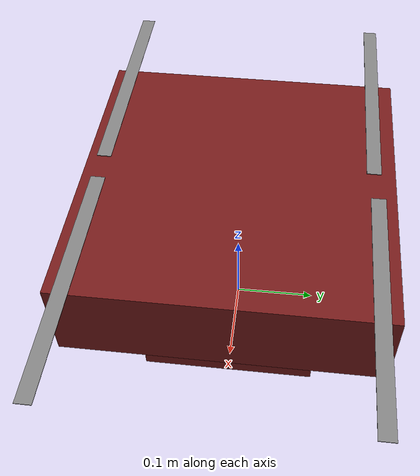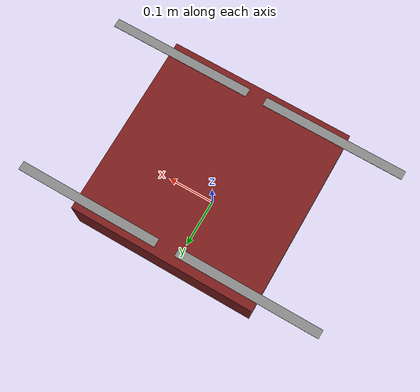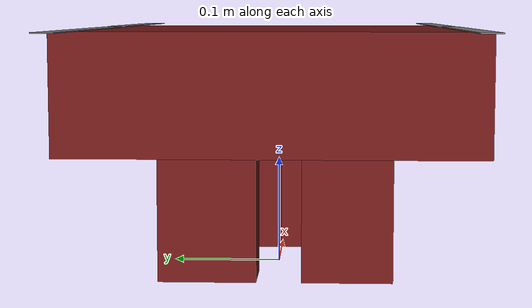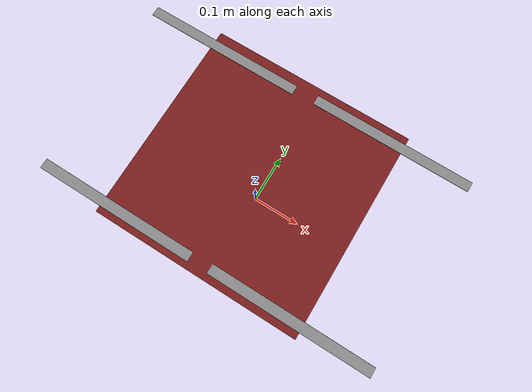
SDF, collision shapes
<?xml version="1.0" encoding="UTF-8"?>
<sdf version='1.9'>
  <!-- F450 + UWB tag variant. Follows the x500_lidar_2d / x500_mono_cam convention:
       merge-include the motorized base airframe, then add the sensor (here a plugin). -->
  <model name='f450-uwb'>
    <include merge='true'>
      <uri>f450</uri>
    </include>

    <plugin filename="gtec_uwb_plugin" name="gtec::UwbSensorPlugin">
      <update_rate>25</update_rate>
      <nlosSoftWallWidth>0.25</nlosSoftWallWidth>
      <tag_z_offset>0.0</tag_z_offset>
      <tag_link>base_link</tag_link>
      <anchor_prefix>anchor_</anchor_prefix>
      <all_los>false</all_los>
      <tag_id>0</tag_id>
      <return_angle>true</return_angle>
    </plugin>
  </model>
</sdf>

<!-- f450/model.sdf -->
<sdf version='1.9'>
  <model name='f450'>
    <include merge='true'>
      <uri>model://f450_base</uri>
    </include>
    <plugin filename="gz-sim-multicopter-motor-model-system" name="gz::sim::systems::MulticopterMotorModel">
      <jointName>rotor_0_joint</jointName>
      <linkName>rotor_0</linkName>
      <turningDirection>ccw</turningDirection>
      <timeConstantUp>0.0125</timeConstantUp>
      <timeConstantDown>0.025</timeConstantDown>
      <maxRotVelocity>1000.0</maxRotVelocity>
      <motorConstant>8.54858e-06</motorConstant>
      <momentConstant>0.016</momentConstant>
      <commandSubTopic>command/motor_speed</commandSubTopic>
      <motorNumber>0</motorNumber>
      <rotorDragCoefficient>8.06428e-05</rotorDragCoefficient>
      <rollingMomentCoefficient>1e-06</rollingMomentCoefficient>
      <rotorVelocitySlowdownSim>10</rotorVelocitySlowdownSim>
      <motorType>velocity</motorType>
    </plugin>
    <plugin filename="gz-sim-multicopter-motor-model-system" name="gz::sim::systems::MulticopterMotorModel">
      <jointName>rotor_1_joint</jointName>
      <linkName>rotor_1</linkName>
      <turningDirection>ccw</turningDirection>
      <timeConstantUp>0.0125</timeConstantUp>
      <timeConstantDown>0.025</timeConstantDown>
      <maxRotVelocity>1000.0</maxRotVelocity>
      <motorConstant>8.54858e-06</motorConstant>
      <momentConstant>0.016</momentConstant>
      <commandSubTopic>command/motor_speed</commandSubTopic>
      <motorNumber>1</motorNumber>
      <rotorDragCoefficient>8.06428e-05</rotorDragCoefficient>
      <rollingMomentCoefficient>1e-06</rollingMomentCoefficient>
      <rotorVelocitySlowdownSim>10</rotorVelocitySlowdownSim>
      <motorType>velocity</motorType>
    </plugin>
    <plugin filename="gz-sim-multicopter-motor-model-system" name="gz::sim::systems::MulticopterMotorModel">
      <jointName>rotor_2_joint</jointName>
      <linkName>rotor_2</linkName>
      <turningDirection>cw</turningDirection>
      <timeConstantUp>0.0125</timeConstantUp>
      <timeConstantDown>0.025</timeConstantDown>
      <maxRotVelocity>1000.0</maxRotVelocity>
      <motorConstant>8.54858e-06</motorConstant>
      <momentConstant>0.016</momentConstant>
      <commandSubTopic>command/motor_speed</commandSubTopic>
      <motorNumber>2</motorNumber>
      <rotorDragCoefficient>8.06428e-05</rotorDragCoefficient>
      <rollingMomentCoefficient>1e-06</rollingMomentCoefficient>
      <rotorVelocitySlowdownSim>10</rotorVelocitySlowdownSim>
      <motorType>velocity</motorType>
    </plugin>
    <plugin filename="gz-sim-multicopter-motor-model-system" name="gz::sim::systems::MulticopterMotorModel">
      <jointName>rotor_3_joint</jointName>
      <linkName>rotor_3</linkName>
      <turningDirection>cw</turningDirection>
      <timeConstantUp>0.0125</timeConstantUp>
      <timeConstantDown>0.025</timeConstantDown>
      <maxRotVelocity>1000.0</maxRotVelocity>
      <motorConstant>8.54858e-06</motorConstant>
      <momentConstant>0.016</momentConstant>
      <commandSubTopic>command/motor_speed</commandSubTopic>
      <motorNumber>3</motorNumber>
      <rotorDragCoefficient>8.06428e-05</rotorDragCoefficient>
      <rollingMomentCoefficient>1e-06</rollingMomentCoefficient>
      <rotorVelocitySlowdownSim>10</rotorVelocitySlowdownSim>
      <motorType>velocity</motorType>
    </plugin>
  </model>
</sdf>

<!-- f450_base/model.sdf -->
<sdf version='1.9'>
  <model name='f450_base'>
    <!-- Spawn pose: lowest collision (landing-leg feet) is at base_link z=-0.1633,
         so base_link rests at z=0.1633; +1.7mm margin lets it settle cleanly. -->
    <pose>0 0 0.165 0 0 0</pose>
    <self_collide>false</self_collide>
    <static>false</static>
    <link name="base_link">
      <inertial>
        <mass>1.5</mass>
        <inertia>
          <ixx>0.02166666666666667</ixx>
          <ixy>0</ixy>
          <ixz>0</ixz>
          <iyy>0.02166666666666667</iyy>
          <iyz>0</iyz>
          <izz>0.04000000000000001</izz>
        </inertia>
      </inertial>
      <gravity>true</gravity>
      <velocity_decay/>
      <visual name="base_link_visual">
        <pose>0 0 0.02 0 0 -.125861774</pose>
        <geometry>
          <mesh>
            <scale>1 1 1</scale>
            <uri>model://f450_base/meshes/F450-base.STL</uri>
          </mesh>
        </geometry>
        <material>
          <ambient>0.12 0.03 0.03 1</ambient>
          <diffuse>0.45 0.1 0.1 1</diffuse>
          <specular>0.2 0.2 0.2 1</specular>
          <pbr>
            <metal>
              <metalness>0.2</metalness>
              <roughness>0.5</roughness>
            </metal>
          </pbr>
        </material>
      </visual>
      <!-- BEGIN gen-collision:base_link -->
      <!-- Auto-generated by tools/collision/gen_collision.py (box fit). Do not hand-edit between markers. -->
      <collision name="base_link_col_00_body">
        <pose>0.0 0.0 0.0071 0 0 0</pose>
        <geometry>
          <box><size>0.3596 0.3596 0.1033</size></box>
        </geometry>
        <surface>
          <contact>
            <ode>
              <min_depth>0.001</min_depth>
              <max_vel>0</max_vel>
            </ode>
          </contact>
          <friction>
            <ode/>
          </friction>
        </surface>
      </collision>
      <collision name="base_link_col_01_leg0">
        <pose>0.0892 0.0515 -0.1042 0 0 0</pose>
        <geometry>
          <box><size>0.0675 0.103 0.1183</size></box>
        </geometry>
        <surface>
          <contact>
            <ode>
              <min_depth>0.001</min_depth>
              <max_vel>0</max_vel>
            </ode>
          </contact>
          <friction>
            <ode/>
          </friction>
        </surface>
      </collision>
      <collision name="base_link_col_02_leg1">
        <pose>-0.0801 0.0597 -0.1042 0 0 0</pose>
        <geometry>
          <box><size>0.0495 0.0871 0.1183</size></box>
        </geometry>
        <surface>
          <contact>
            <ode>
              <min_depth>0.001</min_depth>
              <max_vel>0</max_vel>
            </ode>
          </contact>
          <friction>
            <ode/>
          </friction>
        </surface>
      </collision>
      <collision name="base_link_col_03_leg2">
        <pose>-0.0794 -0.0641 -0.1042 0 0 0</pose>
        <geometry>
          <box><size>0.0493 0.0805 0.1183</size></box>
        </geometry>
        <surface>
          <contact>
            <ode>
              <min_depth>0.001</min_depth>
              <max_vel>0</max_vel>
            </ode>
          </contact>
          <friction>
            <ode/>
          </friction>
        </surface>
      </collision>
      <collision name="base_link_col_04_leg3">
        <pose>0.0891 -0.0521 -0.1042 0 0 0</pose>
        <geometry>
          <box><size>0.0678 0.1041 0.1183</size></box>
        </geometry>
        <surface>
          <contact>
            <ode>
              <min_depth>0.001</min_depth>
              <max_vel>0</max_vel>
            </ode>
          </contact>
          <friction>
            <ode/>
          </friction>
        </surface>
      </collision>
      <!-- END gen-collision:base_link -->
      <sensor name="air_pressure_sensor" type="air_pressure">
        <always_on>1</always_on>
        <update_rate>50</update_rate>
        <air_pressure>
          <!-- Noise modeled after BMP390 -->
          <pressure>
            <noise type="gaussian">
              <mean>0</mean>
              <stddev>3</stddev>
            </noise>
          </pressure>
        </air_pressure>
      </sensor>
      <sensor name="magnetometer_sensor" type="magnetometer">
        <always_on>1</always_on>
        <update_rate>100</update_rate>
        <magnetometer>
          <!-- TODO: update to fix units and coordinate system when we move past Harmonic -->
          <!-- See https://github.com/gazebosim/gz-sim/pull/2460 -->
          <!-- 3mgauss RMS: NOTE: noise is in tesla but sensor reports data in gauss -->
          <!-- Noise modeled after IIS2MDC -->
          <x>
            <noise type="gaussian">
              <stddev>0.0001</stddev>
            </noise>
          </x>
          <y>
            <noise type="gaussian">
              <stddev>0.0001</stddev>
            </noise>
          </y>
          <z>
            <noise type="gaussian">
              <stddev>0.0001</stddev>
            </noise>
          </z>
        </magnetometer>
      </sensor>

      <sensor name="imu_perfect" type="imu">
        <always_on>1</always_on>
        <update_rate>250</update_rate>
        <imu>
          <angular_velocity>
            <!-- Noise modeled after IIM42653 -->
            <!-- 0.05 deg/s converted to rad/s -->
            <x>
              <noise type="gaussian">
                <mean>0.0</mean>
                <stddev>0.0008726646</stddev>
              </noise>
            </x>
            <y>
              <noise type="gaussian">
                <mean>0.0</mean>
                <stddev>0.0008726646</stddev>
              </noise>
            </y>
            <z>
              <noise type="gaussian">
                <mean>0.0</mean>
                <stddev>0.0008726646</stddev>
              </noise>
            </z>
          </angular_velocity>
          <linear_acceleration>
            <!-- Noise modeled after IIM42653 -->
            <!-- X & Y axis: 0.65 mg-rms converted to m/ss -->
            <x>
              <noise type="gaussian">
                <mean>0.0</mean>
                <stddev>0.00637</stddev>
              </noise>
            </x>
            <y>
              <noise type="gaussian">
                <mean>0.0</mean>
                <stddev>0.00637</stddev>
              </noise>
            </y>
            <!-- Z axis: 0.70 mg-rms converted to m/ss-->
            <z>
              <noise type="gaussian">
                <mean>0.0</mean>
                <stddev>0.00686</stddev>
              </noise>
            </z>
          </linear_acceleration>
        </imu>
      </sensor>
      <sensor name="imu_sensor" type="imu">
        <always_on>0</always_on>
        <update_rate>250</update_rate>
        <imu>
          <angular_velocity>
            <!-- Noise modeled after IIM42653 -->
            <!-- 0.05 deg/s converted to rad/s -->
            <x>
              <noise type="gaussian">
                <mean>0.0</mean>
                <stddev>0.0008</stddev>
              </noise>
            </x>
            <y>
              <noise type="gaussian">
                <mean>0.0</mean>
                <stddev>0.0008</stddev>
              </noise>
            </y>
            <z>
              <noise type="gaussian">
                <mean>0.0</mean>
                <stddev>0.0008</stddev>
              </noise>
            </z>
          </angular_velocity>
          <linear_acceleration>
            <!-- Noise modeled after IIM42653 -->
            <!-- X & Y axis: 0.65 mg-rms converted to m/ss -->
            <x>
              <noise type="gaussian">
                <mean>0.0</mean>
                <stddev>0.0065</stddev>
              </noise>
            </x>
            <y>
              <noise type="gaussian">
                <mean>0.2</mean>
                <stddev>0.0065</stddev>
              </noise>
            </y>
            <!-- Z axis: 0.70 mg-rms converted to m/ss-->
            <z>
              <noise type="gaussian">
                <mean>0.2</mean>
                <stddev>0.006</stddev>
              </noise>
            </z>
          </linear_acceleration>
        </imu>
       </sensor>

      <sensor name="navsat_sensor" type="navsat">
        <always_on>1</always_on>
        <update_rate>20</update_rate> <!-- M9N max nav rate -->
      </sensor>

      <!-- Ground-truth GPS: PX4 does NOT read this (different name), no noise. For logging/comparison. -->
      <sensor name="navsat_ground_truth" type="navsat">
        <always_on>1</always_on>
        <update_rate>20</update_rate>
      </sensor>

    </link>
    <link name="rotor_0">
      <gravity>true</gravity>
      <self_collide>false</self_collide>
      <velocity_decay/>
      <pose>0.1578 -0.16 0.06 0 0 0</pose>
      <inertial>
          <mass>0.016076923076923075</mass>
          <inertia>
            <ixx>3.8464910483993325e-07</ixx>
            <iyy>2.6115851691700804e-05</iyy>
            <izz>2.649858234714004e-05</izz>
          </inertia>
        </inertial>
      <visual name="rotor_0_visual">
        <pose>0 0 0 0 0 0</pose>
        <geometry>
          <mesh>
            <scale>1 1 1</scale>
            <uri>model://f450_base/meshes/CCW-prob.STL</uri>
          </mesh>
        </geometry>
        <material>
          <ambient>0.25 0.25 0.25 1</ambient>
          <diffuse>0.5 0.5 0.5 1</diffuse>
          <specular>0.2 0.2 0.2 1</specular>
          <pbr>
            <metal>
              <metalness>0.1</metalness>
              <roughness>0.6</roughness>
            </metal>
          </pbr>
        </material>
      </visual>
      <collision name="rotor_0_collision">
        <pose>0 0 0 0 0 0 </pose>
        <geometry>
          <box>
            <size>0.2792307692307692 0.016923076923076923 0.0008461538461538462</size>
          </box>
        </geometry>
        <surface>
          <contact>
            <ode>
              <min_depth>0.001</min_depth>
              <max_vel>0</max_vel>
            </ode>
          </contact>
          <friction>
            <ode/>
          </friction>
        </surface>
      </collision>
    </link>
    <joint name="rotor_0_joint" type="revolute">
      <parent>base_link</parent>
      <child>rotor_0</child>
      <axis>
        <xyz>0 0 1</xyz>
        <limit>
          <lower>-1e+16</lower>
          <upper>1e+16</upper>
        </limit>
        <dynamics>
          <spring_reference>0</spring_reference>
          <spring_stiffness>0</spring_stiffness>
        </dynamics>
      </axis>
    </joint>
    <link name="rotor_1">
      <gravity>true</gravity>
      <self_collide>false</self_collide>
      <velocity_decay/>
      <pose>-0.1591 0.1552 0.06 0 0 0</pose>
      <inertial>
          <mass>0.016076923076923075</mass>
          <inertia>
            <ixx>3.8464910483993325e-07</ixx>
            <iyy>2.6115851691700804e-05</iyy>
            <izz>2.649858234714004e-05</izz>
          </inertia>
        </inertial>
      <visual name="rotor_1_visual">
        <pose>0 0 0 0 0 0</pose>
        <geometry>
          <mesh>
            <scale>1 1 1</scale>
            <uri>model://f450_base/meshes/CCW-prob.STL</uri>
          </mesh>
        </geometry>
        <material>
          <ambient>0.25 0.25 0.25 1</ambient>
          <diffuse>0.5 0.5 0.5 1</diffuse>
          <specular>0.2 0.2 0.2 1</specular>
          <pbr>
            <metal>
              <metalness>0.1</metalness>
              <roughness>0.6</roughness>
            </metal>
          </pbr>
        </material>
      </visual>
      <collision name="rotor_1_collision">
        <pose>0 0 0 0 0 0 </pose>
        <geometry>
          <box>
            <size>0.2792307692307692 0.016923076923076923 0.0008461538461538462</size>
          </box>
        </geometry>
        <surface>
          <contact>
            <ode>
              <min_depth>0.001</min_depth>
              <max_vel>0</max_vel>
            </ode>
          </contact>
          <friction>
            <ode/>
          </friction>
        </surface>
      </collision>
    </link>
    <joint name="rotor_1_joint" type="revolute">
      <parent>base_link</parent>
      <child>rotor_1</child>
      <axis>
        <xyz>0 0 1</xyz>
        <limit>
          <lower>-1e+16</lower>
          <upper>1e+16</upper>
        </limit>
        <dynamics>
          <spring_reference>0</spring_reference>
          <spring_stiffness>0</spring_stiffness>
        </dynamics>
      </axis>
    </joint>
    <link name="rotor_2">
      <gravity>true</gravity>
      <self_collide>false</self_collide>
      <velocity_decay/>
      <pose>0.1581 0.1592 0.06 0 0 0</pose>
      <inertial>
          <mass>0.016076923076923075</mass>
          <inertia>
            <ixx>3.8464910483993325e-07</ixx>
            <iyy>2.6115851691700804e-05</iyy>
            <izz>2.649858234714004e-05</izz>
          </inertia>
        </inertial>
      <visual name="rotor_2_visual">
        <pose>0 0 0 0 0 0</pose>
        <geometry>
          <mesh>
            <scale>1 1 1</scale>
            <uri>model://f450_base/meshes/CW-prob.STL</uri>
          </mesh>
        </geometry>
        <material>
          <ambient>0.25 0.25 0.25 1</ambient>
          <diffuse>0.5 0.5 0.5 1</diffuse>
          <specular>0.2 0.2 0.2 1</specular>
          <pbr>
            <metal>
              <metalness>0.1</metalness>
              <roughness>0.6</roughness>
            </metal>
          </pbr>
        </material>
      </visual>
      <collision name="rotor_2_collision">
        <pose>0 0 0 0 0 0 </pose>
        <geometry>
          <box>
            <size>0.2792307692307692 0.016923076923076923 0.0008461538461538462</size>
          </box>
        </geometry>
        <surface>
          <contact>
            <ode>
              <min_depth>0.001</min_depth>
              <max_vel>0</max_vel>
            </ode>
          </contact>
          <friction>
            <ode/>
          </friction>
        </surface>
      </collision>
    </link>
    <joint name="rotor_2_joint" type="revolute">
      <parent>base_link</parent>
      <child>rotor_2</child>
      <axis>
        <xyz>0 0 1</xyz>
        <limit>
          <lower>-1e+16</lower>
          <upper>1e+16</upper>
        </limit>
        <dynamics>
          <spring_reference>0</spring_reference>
          <spring_stiffness>0</spring_stiffness>
        </dynamics>
      </axis>
    </joint>
    <link name="rotor_3">
      <gravity>true</gravity>
      <self_collide>false</self_collide>
      <velocity_decay/>
      <pose>-0.1558 -0.1612 0.06 0 0 0</pose>
      <inertial>
          <mass>0.016076923076923075</mass>
          <inertia>
            <ixx>3.8464910483993325e-07</ixx>
            <iyy>2.6115851691700804e-05</iyy>
            <izz>2.649858234714004e-05</izz>
          </inertia>
        </inertial>
      <visual name="rotor_3_visual">
        <pose>0 0 0 0 0 0</pose>
        <geometry>
          <mesh>
            <scale>1 1 1</scale>
            <uri>model://f450_base/meshes/CW-prob.STL</uri>
          </mesh>
        </geometry>
        <material>
          <ambient>0.25 0.25 0.25 1</ambient>
          <diffuse>0.5 0.5 0.5 1</diffuse>
          <specular>0.2 0.2 0.2 1</specular>
          <pbr>
            <metal>
              <metalness>0.1</metalness>
              <roughness>0.6</roughness>
            </metal>
          </pbr>
        </material>
      </visual>
      <collision name="rotor_3_collision">
        <pose>0 0 0 0 0 0 </pose>
        <geometry>
          <box>
            <size>0.2792307692307692 0.016923076923076923 0.0008461538461538462</size>
          </box>
        </geometry>
        <surface>
          <contact>
            <ode>
              <min_depth>0.001</min_depth>
              <max_vel>0</max_vel>
            </ode>
          </contact>
          <friction>
            <ode/>
          </friction>
        </surface>
      </collision>
    </link>
    <joint name="rotor_3_joint" type="revolute">
      <parent>base_link</parent>
      <child>rotor_3</child>
      <axis>
        <xyz>0 0 1</xyz>
        <limit>
          <lower>-1e+16</lower>
          <upper>1e+16</upper>
        </limit>
        <dynamics>
          <spring_reference>0</spring_reference>
          <spring_stiffness>0</spring_stiffness>
        </dynamics>
      </axis>
    </joint>

    <!-- UWB anchor include (attached to base_link) -->
    <plugin
      filename="gz-sim-odometry-publisher-system"
      name="gz::sim::systems::OdometryPublisher">
      <odom_topic>/model/f450/odometry</odom_topic>
      <odom_frame>world</odom_frame>
      <robot_base_frame>base_link</robot_base_frame>
      <dimensions>3</dimensions>
    </plugin>

  </model>
</sdf>
